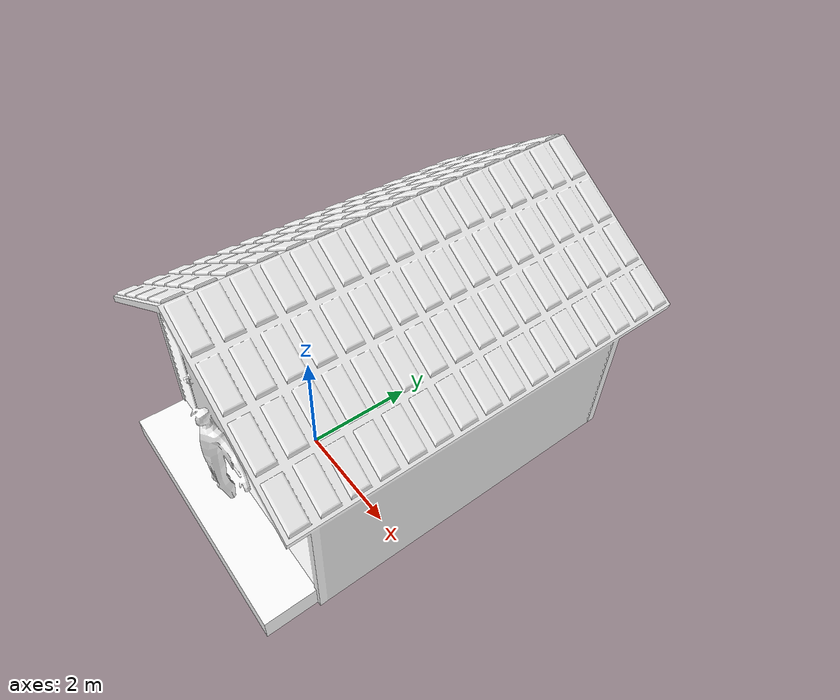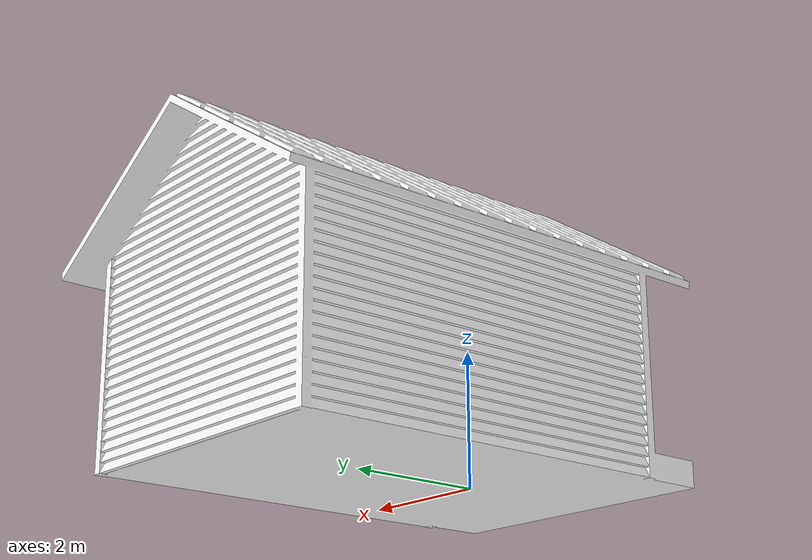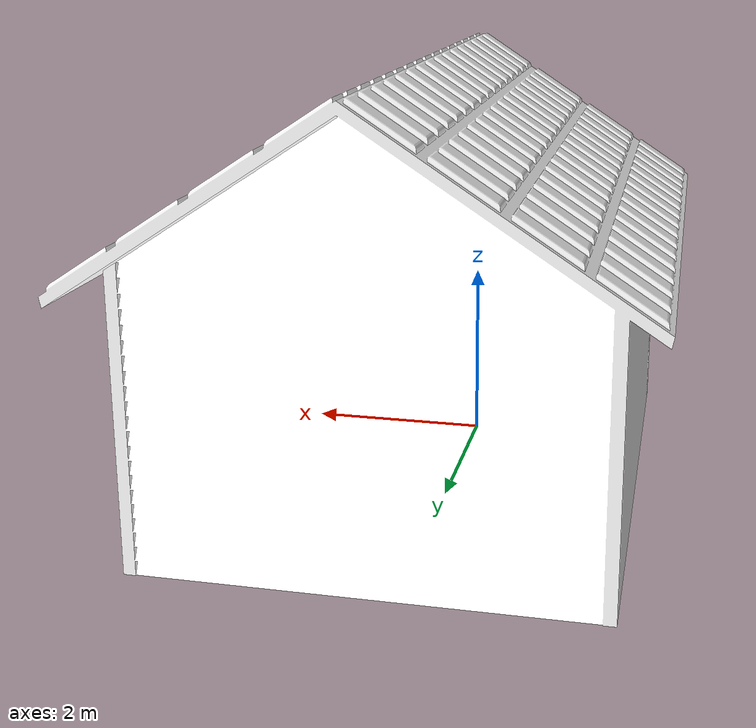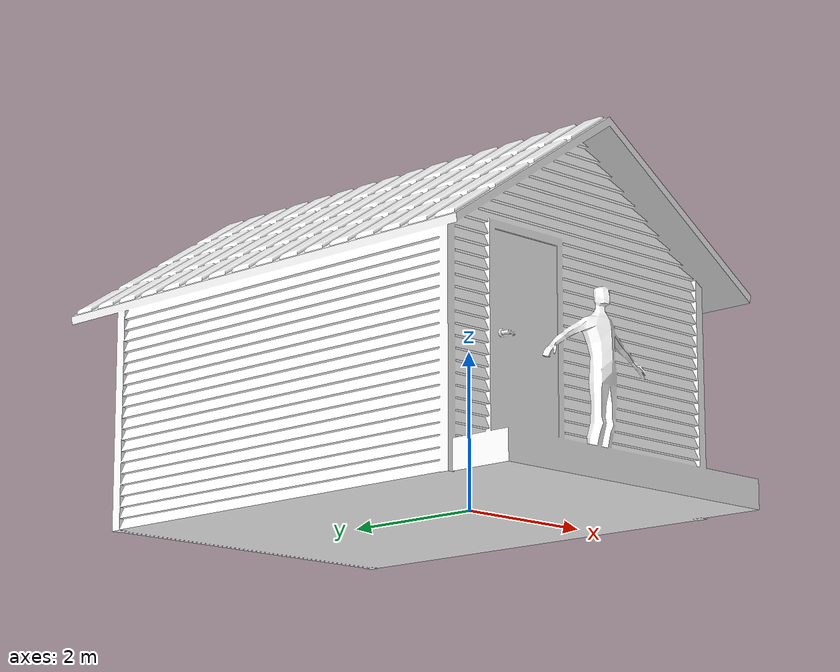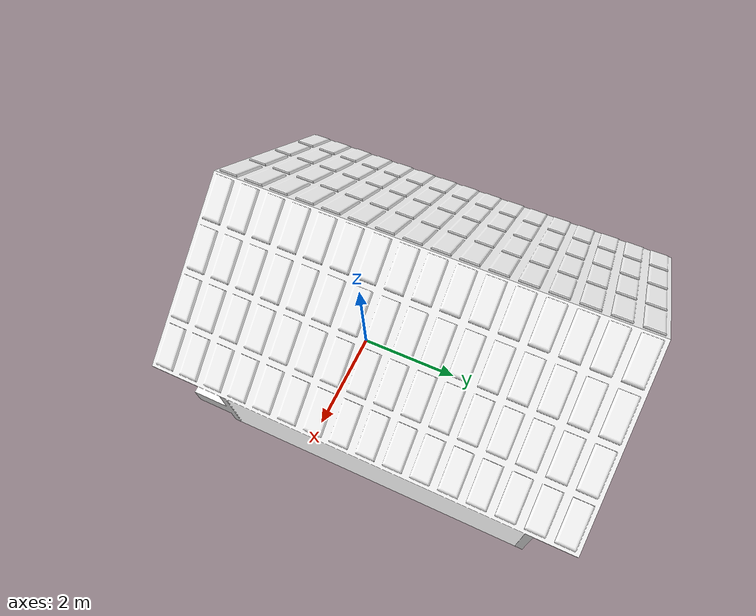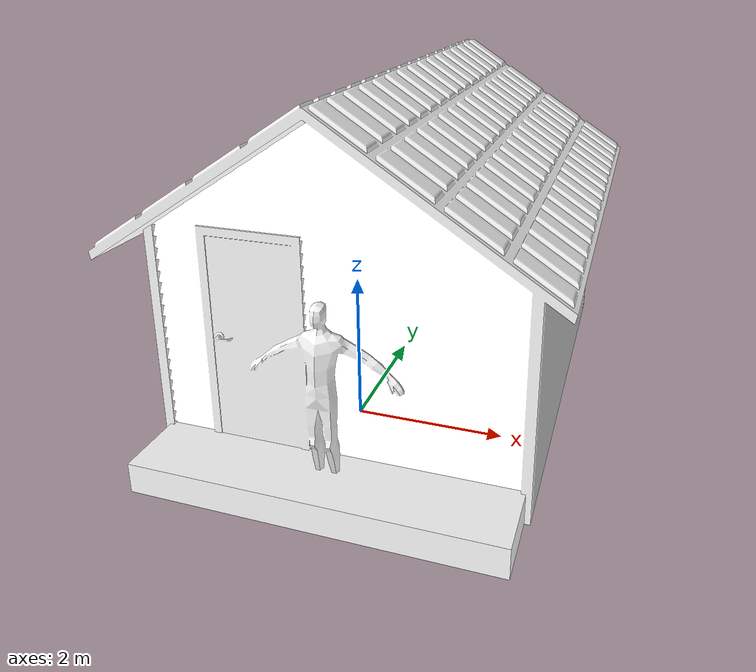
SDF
<?xml version="1.0" ?>
<sdf version="1.6">
  <model name="house_1">
    <pose>0 0 0 0 0 0</pose>
    <static>true</static>
    <link name="body">
      <visual name="visual">
        <geometry>
          <mesh><uri>model://house_1/media/house.dae</uri></mesh>
        </geometry>
        <material>
          <ambient>1 1 1 1</ambient>
          <diffuse>1 1 1 1</diffuse>
          <specular>0.1 0.1 0.1 1</specular>
          <pbr>
            <metal>
              <albedo_map>model://house_1/media/Textures/house.png</albedo_map>
            </metal>
          </pbr>
        </material>
      </visual>
      <collision name="collision">
        <geometry>
          <mesh><uri>model://house_1/media/house.dae</uri></mesh>
        </geometry>
      </collision>
    </link>
  </model>
</sdf>
